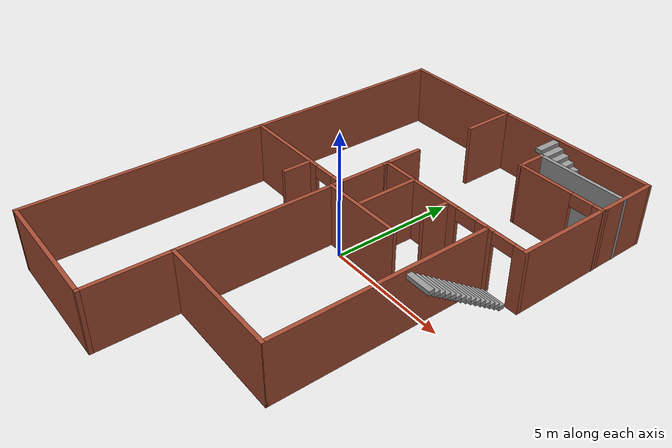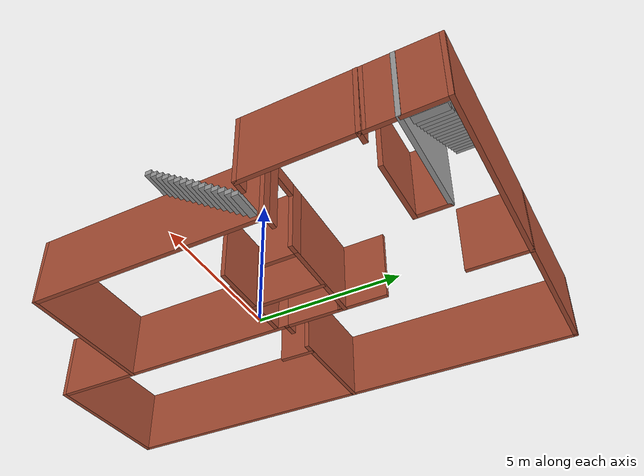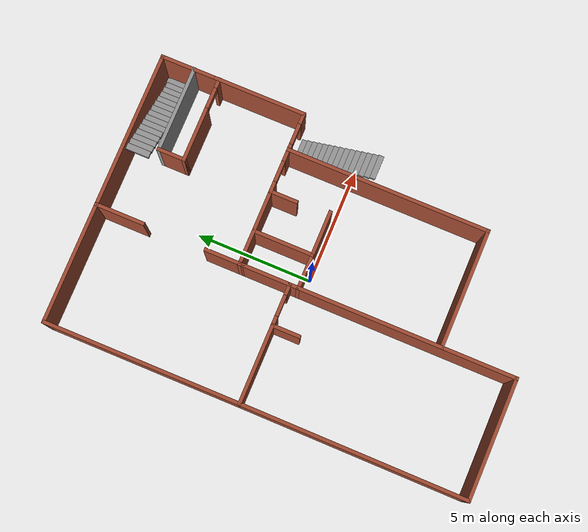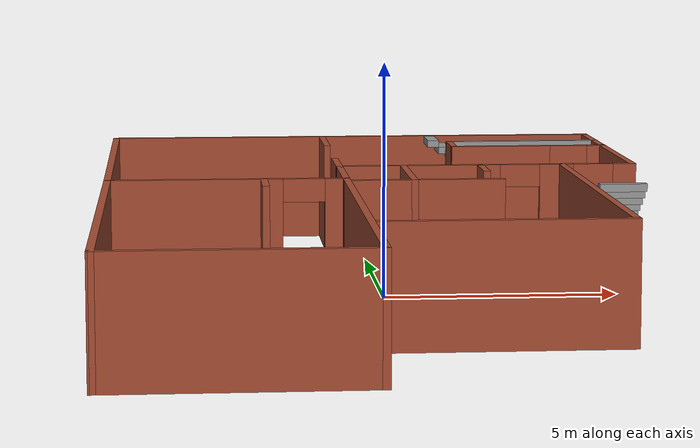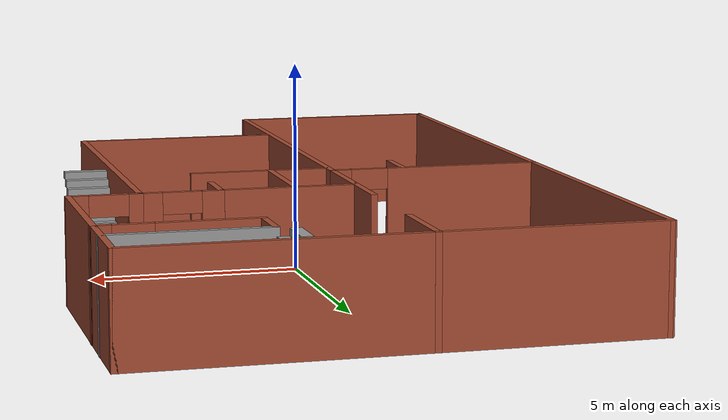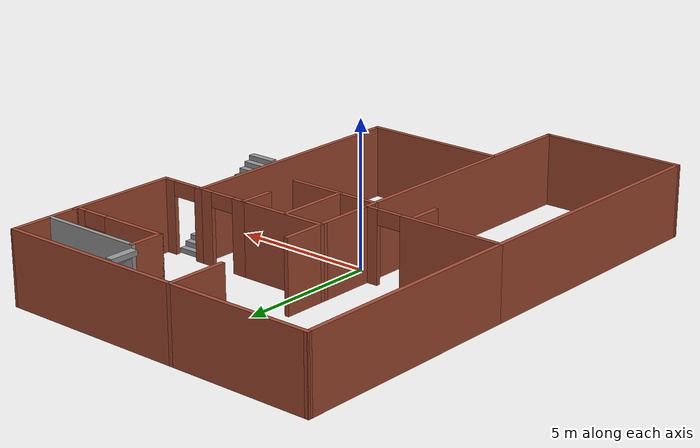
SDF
<?xml version='1.0'?>
<sdf version='1.5'>
  <model name='OutpostBasment'>
    <pose frame=''>0.004701 -0.024899 0 0 -0 0</pose>
    <link name='Stairs_0'>
      <visual name='Stairs_0_Visual_0'>
        <pose frame=''>4.95537 2.50215 0.083333 0 -0 0</pose>
        <geometry>
          <box>
            <size>1 0.233333 0.166667</size>
          </box>
        </geometry>
        <material>
          <script>
            <uri>file://media/materials/scripts/gazebo.material</uri>
            <name>Gazebo/Grey</name>
          </script>
          <ambient>1 1 1 1</ambient>
        </material>
      </visual>
      <collision name='Stairs_0_Collision_0'>
        <geometry>
          <box>
            <size>1 0.233333 0.166667</size>
          </box>
        </geometry>
        <pose frame=''>4.95537 2.50215 0.083333 0 -0 0</pose>
      </collision>
      <visual name='Stairs_0_Visual_1'>
        <pose frame=''>4.95537 2.26882 0.25 0 -0 0</pose>
        <geometry>
          <box>
            <size>1 0.233333 0.166667</size>
          </box>
        </geometry>
        <material>
          <script>
            <uri>file://media/materials/scripts/gazebo.material</uri>
            <name>Gazebo/Grey</name>
          </script>
          <ambient>1 1 1 1</ambient>
        </material>
      </visual>
      <collision name='Stairs_0_Collision_1'>
        <geometry>
          <box>
            <size>1 0.233333 0.166667</size>
          </box>
        </geometry>
        <pose frame=''>4.95537 2.26882 0.25 0 -0 0</pose>
      </collision>
      <visual name='Stairs_0_Visual_2'>
        <pose frame=''>4.95537 2.03548 0.416667 0 -0 0</pose>
        <geometry>
          <box>
            <size>1 0.233333 0.166667</size>
          </box>
        </geometry>
        <material>
          <script>
            <uri>file://media/materials/scripts/gazebo.material</uri>
            <name>Gazebo/Grey</name>
          </script>
          <ambient>1 1 1 1</ambient>
        </material>
      </visual>
      <collision name='Stairs_0_Collision_2'>
        <geometry>
          <box>
            <size>1 0.233333 0.166667</size>
          </box>
        </geometry>
        <pose frame=''>4.95537 2.03548 0.416667 0 -0 0</pose>
      </collision>
      <visual name='Stairs_0_Visual_3'>
        <pose frame=''>4.95537 1.80215 0.583333 0 -0 0</pose>
        <geometry>
          <box>
            <size>1 0.233333 0.166667</size>
          </box>
        </geometry>
        <material>
          <script>
            <uri>file://media/materials/scripts/gazebo.material</uri>
            <name>Gazebo/Grey</name>
          </script>
          <ambient>1 1 1 1</ambient>
        </material>
      </visual>
      <collision name='Stairs_0_Collision_3'>
        <geometry>
          <box>
            <size>1 0.233333 0.166667</size>
          </box>
        </geometry>
        <pose frame=''>4.95537 1.80215 0.583333 0 -0 0</pose>
      </collision>
      <visual name='Stairs_0_Visual_4'>
        <pose frame=''>4.95537 1.56882 0.75 0 -0 0</pose>
        <geometry>
          <box>
            <size>1 0.233333 0.166667</size>
          </box>
        </geometry>
        <material>
          <script>
            <uri>file://media/materials/scripts/gazebo.material</uri>
            <name>Gazebo/Grey</name>
          </script>
          <ambient>1 1 1 1</ambient>
        </material>
      </visual>
      <collision name='Stairs_0_Collision_4'>
        <geometry>
          <box>
            <size>1 0.233333 0.166667</size>
          </box>
        </geometry>
        <pose frame=''>4.95537 1.56882 0.75 0 -0 0</pose>
      </collision>
      <visual name='Stairs_0_Visual_5'>
        <pose frame=''>4.95537 1.33548 0.916667 0 -0 0</pose>
        <geometry>
          <box>
            <size>1 0.233333 0.166667</size>
          </box>
        </geometry>
        <material>
          <script>
            <uri>file://media/materials/scripts/gazebo.material</uri>
            <name>Gazebo/Grey</name>
          </script>
          <ambient>1 1 1 1</ambient>
        </material>
      </visual>
      <collision name='Stairs_0_Collision_5'>
        <geometry>
          <box>
            <size>1 0.233333 0.166667</size>
          </box>
        </geometry>
        <pose frame=''>4.95537 1.33548 0.916667 0 -0 0</pose>
      </collision>
      <visual name='Stairs_0_Visual_6'>
        <pose frame=''>4.95537 1.10215 1.08333 0 -0 0</pose>
        <geometry>
          <box>
            <size>1 0.233333 0.166667</size>
          </box>
        </geometry>
        <material>
          <script>
            <uri>file://media/materials/scripts/gazebo.material</uri>
            <name>Gazebo/Grey</name>
          </script>
          <ambient>1 1 1 1</ambient>
        </material>
      </visual>
      <collision name='Stairs_0_Collision_6'>
        <geometry>
          <box>
            <size>1 0.233333 0.166667</size>
          </box>
        </geometry>
        <pose frame=''>4.95537 1.10215 1.08333 0 -0 0</pose>
      </collision>
      <visual name='Stairs_0_Visual_7'>
        <pose frame=''>4.95537 0.868815 1.25 0 -0 0</pose>
        <geometry>
          <box>
            <size>1 0.233333 0.166667</size>
          </box>
        </geometry>
        <material>
          <script>
            <uri>file://media/materials/scripts/gazebo.material</uri>
            <name>Gazebo/Grey</name>
          </script>
          <ambient>1 1 1 1</ambient>
        </material>
      </visual>
      <collision name='Stairs_0_Collision_7'>
        <geometry>
          <box>
            <size>1 0.233333 0.166667</size>
          </box>
        </geometry>
        <pose frame=''>4.95537 0.868815 1.25 0 -0 0</pose>
      </collision>
      <visual name='Stairs_0_Visual_8'>
        <pose frame=''>4.95537 0.635481 1.41667 0 -0 0</pose>
        <geometry>
          <box>
            <size>1 0.233333 0.166667</size>
          </box>
        </geometry>
        <material>
          <script>
            <uri>file://media/materials/scripts/gazebo.material</uri>
            <name>Gazebo/Grey</name>
          </script>
          <ambient>1 1 1 1</ambient>
        </material>
      </visual>
      <collision name='Stairs_0_Collision_8'>
        <geometry>
          <box>
            <size>1 0.233333 0.166667</size>
          </box>
        </geometry>
        <pose frame=''>4.95537 0.635481 1.41667 0 -0 0</pose>
      </collision>
      <visual name='Stairs_0_Visual_9'>
        <pose frame=''>4.95537 0.402148 1.58333 0 -0 0</pose>
        <geometry>
          <box>
            <size>1 0.233333 0.166667</size>
          </box>
        </geometry>
        <material>
          <script>
            <uri>file://media/materials/scripts/gazebo.material</uri>
            <name>Gazebo/Grey</name>
          </script>
          <ambient>1 1 1 1</ambient>
        </material>
      </visual>
      <collision name='Stairs_0_Collision_9'>
        <geometry>
          <box>
            <size>1 0.233333 0.166667</size>
          </box>
        </geometry>
        <pose frame=''>4.95537 0.402148 1.58333 0 -0 0</pose>
      </collision>
      <visual name='Stairs_0_Visual_10'>
        <pose frame=''>4.95537 0.168815 1.75 0 -0 0</pose>
        <geometry>
          <box>
            <size>1 0.233333 0.166667</size>
          </box>
        </geometry>
        <material>
          <script>
            <uri>file://media/materials/scripts/gazebo.material</uri>
            <name>Gazebo/Grey</name>
          </script>
          <ambient>1 1 1 1</ambient>
        </material>
      </visual>
      <collision name='Stairs_0_Collision_10'>
        <geometry>
          <box>
            <size>1 0.233333 0.166667</size>
          </box>
        </geometry>
        <pose frame=''>4.95537 0.168815 1.75 0 -0 0</pose>
      </collision>
      <visual name='Stairs_0_Visual_11'>
        <pose frame=''>4.95537 -0.064519 1.91667 0 -0 0</pose>
        <geometry>
          <box>
            <size>1 0.233333 0.166667</size>
          </box>
        </geometry>
        <material>
          <script>
            <uri>file://media/materials/scripts/gazebo.material</uri>
            <name>Gazebo/Grey</name>
          </script>
          <ambient>1 1 1 1</ambient>
        </material>
      </visual>
      <collision name='Stairs_0_Collision_11'>
        <geometry>
          <box>
            <size>1 0.233333 0.166667</size>
          </box>
        </geometry>
        <pose frame=''>4.95537 -0.064519 1.91667 0 -0 0</pose>
      </collision>
      <visual name='Stairs_0_Visual_12'>
        <pose frame=''>4.95537 -0.297852 2.08333 0 -0 0</pose>
        <geometry>
          <box>
            <size>1 0.233333 0.166667</size>
          </box>
        </geometry>
        <material>
          <script>
            <uri>file://media/materials/scripts/gazebo.material</uri>
            <name>Gazebo/Grey</name>
          </script>
          <ambient>1 1 1 1</ambient>
        </material>
      </visual>
      <collision name='Stairs_0_Collision_12'>
        <geometry>
          <box>
            <size>1 0.233333 0.166667</size>
          </box>
        </geometry>
        <pose frame=''>4.95537 -0.297852 2.08333 0 -0 0</pose>
      </collision>
      <visual name='Stairs_0_Visual_13'>
        <pose frame=''>4.95537 -0.531185 2.25 0 -0 0</pose>
        <geometry>
          <box>
            <size>1 0.233333 0.166667</size>
          </box>
        </geometry>
        <material>
          <script>
            <uri>file://media/materials/scripts/gazebo.material</uri>
            <name>Gazebo/Grey</name>
          </script>
          <ambient>1 1 1 1</ambient>
        </material>
      </visual>
      <collision name='Stairs_0_Collision_13'>
        <geometry>
          <box>
            <size>1 0.233333 0.166667</size>
          </box>
        </geometry>
        <pose frame=''>4.95537 -0.531185 2.25 0 -0 0</pose>
      </collision>
      <visual name='Stairs_0_Visual_14'>
        <pose frame=''>4.95537 -0.764519 2.41667 0 -0 0</pose>
        <geometry>
          <box>
            <size>1 0.233333 0.166667</size>
          </box>
        </geometry>
        <material>
          <script>
            <uri>file://media/materials/scripts/gazebo.material</uri>
            <name>Gazebo/Grey</name>
          </script>
          <ambient>1 1 1 1</ambient>
        </material>
      </visual>
      <collision name='Stairs_0_Collision_14'>
        <geometry>
          <box>
            <size>1 0.233333 0.166667</size>
          </box>
        </geometry>
        <pose frame=''>4.95537 -0.764519 2.41667 0 -0 0</pose>
      </collision>
    </link>
    <link name='Stairs_1'>
      <visual name='Stairs_1_Visual_0'>
        <pose frame=''>5.62792 8.31958 0.083333 0 0 -1.5708</pose>
        <geometry>
          <box>
            <size>1 0.265981 0.166667</size>
          </box>
        </geometry>
        <material>
          <script>
            <uri>file://media/materials/scripts/gazebo.material</uri>
            <name>Gazebo/Grey</name>
          </script>
          <ambient>1 1 1 1</ambient>
        </material>
      </visual>
      <collision name='Stairs_1_Collision_0'>
        <geometry>
          <box>
            <size>1 0.265981 0.166667</size>
          </box>
        </geometry>
        <pose frame=''>5.62792 8.31958 0.083333 0 0 -1.5708</pose>
      </collision>
      <visual name='Stairs_1_Visual_1'>
        <pose frame=''>5.36193 8.31958 0.25 0 0 -1.5708</pose>
        <geometry>
          <box>
            <size>1 0.265981 0.166667</size>
          </box>
        </geometry>
        <material>
          <script>
            <uri>file://media/materials/scripts/gazebo.material</uri>
            <name>Gazebo/Grey</name>
          </script>
          <ambient>1 1 1 1</ambient>
        </material>
      </visual>
      <collision name='Stairs_1_Collision_1'>
        <geometry>
          <box>
            <size>1 0.265981 0.166667</size>
          </box>
        </geometry>
        <pose frame=''>5.36193 8.31958 0.25 0 0 -1.5708</pose>
      </collision>
      <visual name='Stairs_1_Visual_2'>
        <pose frame=''>5.09595 8.31958 0.416667 0 0 -1.5708</pose>
        <geometry>
          <box>
            <size>1 0.265981 0.166667</size>
          </box>
        </geometry>
        <material>
          <script>
            <uri>file://media/materials/scripts/gazebo.material</uri>
            <name>Gazebo/Grey</name>
          </script>
          <ambient>1 1 1 1</ambient>
        </material>
      </visual>
      <collision name='Stairs_1_Collision_2'>
        <geometry>
          <box>
            <size>1 0.265981 0.166667</size>
          </box>
        </geometry>
        <pose frame=''>5.09595 8.31958 0.416667 0 0 -1.5708</pose>
      </collision>
      <visual name='Stairs_1_Visual_3'>
        <pose frame=''>4.82997 8.31958 0.583333 0 0 -1.5708</pose>
        <geometry>
          <box>
            <size>1 0.265981 0.166667</size>
          </box>
        </geometry>
        <material>
          <script>
            <uri>file://media/materials/scripts/gazebo.material</uri>
            <name>Gazebo/Grey</name>
          </script>
          <ambient>1 1 1 1</ambient>
        </material>
      </visual>
      <collision name='Stairs_1_Collision_3'>
        <geometry>
          <box>
            <size>1 0.265981 0.166667</size>
          </box>
        </geometry>
        <pose frame=''>4.82997 8.31958 0.583333 0 0 -1.5708</pose>
      </collision>
      <visual name='Stairs_1_Visual_4'>
        <pose frame=''>4.56399 8.31958 0.75 0 0 -1.5708</pose>
        <geometry>
          <box>
            <size>1 0.265981 0.166667</size>
          </box>
        </geometry>
        <material>
          <script>
            <uri>file://media/materials/scripts/gazebo.material</uri>
            <name>Gazebo/Grey</name>
          </script>
          <ambient>1 1 1 1</ambient>
        </material>
      </visual>
      <collision name='Stairs_1_Collision_4'>
        <geometry>
          <box>
            <size>1 0.265981 0.166667</size>
          </box>
        </geometry>
        <pose frame=''>4.56399 8.31958 0.75 0 0 -1.5708</pose>
      </collision>
      <visual name='Stairs_1_Visual_5'>
        <pose frame=''>4.29801 8.31958 0.916667 0 0 -1.5708</pose>
        <geometry>
          <box>
            <size>1 0.265981 0.166667</size>
          </box>
        </geometry>
        <material>
          <script>
            <uri>file://media/materials/scripts/gazebo.material</uri>
            <name>Gazebo/Grey</name>
          </script>
          <ambient>1 1 1 1</ambient>
        </material>
      </visual>
      <collision name='Stairs_1_Collision_5'>
        <geometry>
          <box>
            <size>1 0.265981 0.166667</size>
          </box>
        </geometry>
        <pose frame=''>4.29801 8.31958 0.916667 0 0 -1.5708</pose>
      </collision>
      <visual name='Stairs_1_Visual_6'>
        <pose frame=''>4.03203 8.31958 1.08333 0 0 -1.5708</pose>
        <geometry>
          <box>
            <size>1 0.265981 0.166667</size>
          </box>
        </geometry>
        <material>
          <script>
            <uri>file://media/materials/scripts/gazebo.material</uri>
            <name>Gazebo/Grey</name>
          </script>
          <ambient>1 1 1 1</ambient>
        </material>
      </visual>
      <collision name='Stairs_1_Collision_6'>
        <geometry>
          <box>
            <size>1 0.265981 0.166667</size>
          </box>
        </geometry>
        <pose frame=''>4.03203 8.31958 1.08333 0 0 -1.5708</pose>
      </collision>
      <visual name='Stairs_1_Visual_7'>
        <pose frame=''>3.76605 8.31958 1.25 0 0 -1.5708</pose>
        <geometry>
          <box>
            <size>1 0.265981 0.166667</size>
          </box>
        </geometry>
        <material>
          <script>
            <uri>file://media/materials/scripts/gazebo.material</uri>
            <name>Gazebo/Grey</name>
          </script>
          <ambient>1 1 1 1</ambient>
        </material>
      </visual>
      <collision name='Stairs_1_Collision_7'>
        <geometry>
          <box>
            <size>1 0.265981 0.166667</size>
          </box>
        </geometry>
        <pose frame=''>3.76605 8.31958 1.25 0 0 -1.5708</pose>
      </collision>
      <visual name='Stairs_1_Visual_8'>
        <pose frame=''>3.50006 8.31958 1.41667 0 0 -1.5708</pose>
        <geometry>
          <box>
            <size>1 0.265981 0.166667</size>
          </box>
        </geometry>
        <material>
          <script>
            <uri>file://media/materials/scripts/gazebo.material</uri>
            <name>Gazebo/Grey</name>
          </script>
          <ambient>1 1 1 1</ambient>
        </material>
      </visual>
      <collision name='Stairs_1_Collision_8'>
        <geometry>
          <box>
            <size>1 0.265981 0.166667</size>
          </box>
        </geometry>
        <pose frame=''>3.50006 8.31958 1.41667 0 0 -1.5708</pose>
      </collision>
      <visual name='Stairs_1_Visual_9'>
        <pose frame=''>3.23408 8.31958 1.58333 0 0 -1.5708</pose>
        <geometry>
          <box>
            <size>1 0.265981 0.166667</size>
          </box>
        </geometry>
        <material>
          <script>
            <uri>file://media/materials/scripts/gazebo.material</uri>
            <name>Gazebo/Grey</name>
          </script>
          <ambient>1 1 1 1</ambient>
        </material>
      </visual>
      <collision name='Stairs_1_Collision_9'>
        <geometry>
          <box>
            <size>1 0.265981 0.166667</size>
          </box>
        </geometry>
        <pose frame=''>3.23408 8.31958 1.58333 0 0 -1.5708</pose>
      </collision>
      <visual name='Stairs_1_Visual_10'>
        <pose frame=''>2.9681 8.31958 1.75 0 0 -1.5708</pose>
        <geometry>
          <box>
            <size>1 0.265981 0.166667</size>
          </box>
        </geometry>
        <material>
          <script>
            <uri>file://media/materials/scripts/gazebo.material</uri>
            <name>Gazebo/Grey</name>
          </script>
          <ambient>1 1 1 1</ambient>
        </material>
      </visual>
      <collision name='Stairs_1_Collision_10'>
        <geometry>
          <box>
            <size>1 0.265981 0.166667</size>
          </box>
        </geometry>
        <pose frame=''>2.9681 8.31958 1.75 0 0 -1.5708</pose>
      </collision>
      <visual name='Stairs_1_Visual_11'>
        <pose frame=''>2.70212 8.31958 1.91667 0 0 -1.5708</pose>
        <geometry>
          <box>
            <size>1 0.265981 0.166667</size>
          </box>
        </geometry>
        <material>
          <script>
            <uri>file://media/materials/scripts/gazebo.material</uri>
            <name>Gazebo/Grey</name>
          </script>
          <ambient>1 1 1 1</ambient>
        </material>
      </visual>
      <collision name='Stairs_1_Collision_11'>
        <geometry>
          <box>
            <size>1 0.265981 0.166667</size>
          </box>
        </geometry>
        <pose frame=''>2.70212 8.31958 1.91667 0 0 -1.5708</pose>
      </collision>
      <visual name='Stairs_1_Visual_12'>
        <pose frame=''>2.43614 8.31958 2.08333 0 0 -1.5708</pose>
        <geometry>
          <box>
            <size>1 0.265981 0.166667</size>
          </box>
        </geometry>
        <material>
          <script>
            <uri>file://media/materials/scripts/gazebo.material</uri>
            <name>Gazebo/Grey</name>
          </script>
          <ambient>1 1 1 1</ambient>
        </material>
      </visual>
      <collision name='Stairs_1_Collision_12'>
        <geometry>
          <box>
            <size>1 0.265981 0.166667</size>
          </box>
        </geometry>
        <pose frame=''>2.43614 8.31958 2.08333 0 0 -1.5708</pose>
      </collision>
      <visual name='Stairs_1_Visual_13'>
        <pose frame=''>2.17016 8.31958 2.25 0 0 -1.5708</pose>
        <geometry>
          <box>
            <size>1 0.265981 0.166667</size>
          </box>
        </geometry>
        <material>
          <script>
            <uri>file://media/materials/scripts/gazebo.material</uri>
            <name>Gazebo/Grey</name>
          </script>
          <ambient>1 1 1 1</ambient>
        </material>
      </visual>
      <collision name='Stairs_1_Collision_13'>
        <geometry>
          <box>
            <size>1 0.265981 0.166667</size>
          </box>
        </geometry>
        <pose frame=''>2.17016 8.31958 2.25 0 0 -1.5708</pose>
      </collision>
      <visual name='Stairs_1_Visual_14'>
        <pose frame=''>1.90417 8.31958 2.41667 0 0 -1.5708</pose>
        <geometry>
          <box>
            <size>1 0.265981 0.166667</size>
          </box>
        </geometry>
        <material>
          <script>
            <uri>file://media/materials/scripts/gazebo.material</uri>
            <name>Gazebo/Grey</name>
          </script>
          <ambient>1 1 1 1</ambient>
        </material>
      </visual>
      <collision name='Stairs_1_Collision_14'>
        <geometry>
          <box>
            <size>1 0.265981 0.166667</size>
          </box>
        </geometry>
        <pose frame=''>1.90417 8.31958 2.41667 0 0 -1.5708</pose>
      </collision>
    </link>
    <link name='Wall_0'>
      <collision name='Wall_0_Collision'>
        <geometry>
          <box>
            <size>5.25 0.15 2.5</size>
          </box>
        </geometry>
        <pose frame=''>0 0 1.25 0 -0 0</pose>
      </collision>
      <visual name='Wall_0_Visual'>
        <pose frame=''>0 0 1.25 0 -0 0</pose>
        <geometry>
          <box>
            <size>5.25 0.15 2.5</size>
          </box>
        </geometry>
        <material>
          <script>
            <uri>file://media/materials/scripts/gazebo.material</uri>
            <name>Gazebo/Bricks</name>
          </script>
          <ambient>1 1 1 1</ambient>
        </material>
      </visual>
      <pose frame=''>-3.3147 -8.9751 0 0 -0 0</pose>
    </link>
    <link name='Wall_11'>
      <collision name='Wall_11_Collision'>
        <geometry>
          <box>
            <size>5.25 0.15 2.5</size>
          </box>
        </geometry>
        <pose frame=''>0 0 1.25 0 -0 0</pose>
      </collision>
      <visual name='Wall_11_Visual'>
        <pose frame=''>0 0 1.25 0 -0 0</pose>
        <geometry>
          <box>
            <size>5.25 0.15 2.5</size>
          </box>
        </geometry>
        <material>
          <script>
            <uri>file://media/materials/scripts/gazebo.material</uri>
            <name>Gazebo/Bricks</name>
          </script>
          <ambient>1 1 1 1</ambient>
        </material>
      </visual>
      <pose frame=''>-3.3147 8.9749 0 0 -0 0</pose>
    </link>
    <link name='Wall_12'>
      <collision name='Wall_12_Collision'>
        <geometry>
          <box>
            <size>0.15 0.15 2.5</size>
          </box>
        </geometry>
        <pose frame=''>0 0 1.25 0 -0 0</pose>
      </collision>
      <visual name='Wall_12_Visual'>
        <pose frame=''>0 0 1.25 0 -0 0</pose>
        <geometry>
          <box>
            <size>0.15 0.15 2.5</size>
          </box>
        </geometry>
        <material>
          <script>
            <uri>file://media/materials/scripts/gazebo.material</uri>
            <name>Gazebo/Grey</name>
          </script>
          <ambient>1 1 1 1</ambient>
        </material>
      </visual>
      <pose frame=''>-0.764701 8.9749 0 0 -0 0</pose>
    </link>
    <link name='Wall_13'>
      <collision name='Wall_13_Collision'>
        <geometry>
          <box>
            <size>6.77011 0.15 2.5</size>
          </box>
        </geometry>
        <pose frame=''>0 0 1.25 0 -0 0</pose>
      </collision>
      <visual name='Wall_13_Visual'>
        <pose frame=''>0 0 1.25 0 -0 0</pose>
        <geometry>
          <box>
            <size>6.77011 0.15 2.5</size>
          </box>
        </geometry>
        <material>
          <script>
            <uri>file://media/materials/scripts/gazebo.material</uri>
            <name>Gazebo/Bricks</name>
          </script>
          <ambient>1 1 1 1</ambient>
        </material>
      </visual>
      <pose frame=''>2.5453 8.9749 0 0 -0 0</pose>
    </link>
    <link name='Wall_16'>
      <collision name='Wall_16_Collision'>
        <geometry>
          <box>
            <size>2.5 0.15 2.5</size>
          </box>
        </geometry>
        <pose frame=''>0 0 1.25 0 -0 0</pose>
      </collision>
      <visual name='Wall_16_Visual'>
        <pose frame=''>0 0 1.25 0 -0 0</pose>
        <geometry>
          <box>
            <size>2.5 0.15 2.5</size>
          </box>
        </geometry>
        <material>
          <script>
            <uri>file://media/materials/scripts/gazebo.material</uri>
            <name>Gazebo/Bricks</name>
          </script>
          <ambient>1 1 1 1</ambient>
        </material>
      </visual>
      <pose frame=''>5.85536 7.7999 0 0 0 -1.57075</pose>
    </link>
    <link name='Wall_17'>
      <collision name='Wall_17_Collision'>
        <geometry>
          <box>
            <size>4 0.15 2.5</size>
          </box>
        </geometry>
        <pose frame=''>0 0 1.25 0 -0 0</pose>
      </collision>
      <visual name='Wall_17_Visual'>
        <pose frame=''>0 0 1.25 0 -0 0</pose>
        <geometry>
          <box>
            <size>4 0.15 2.5</size>
          </box>
        </geometry>
        <material>
          <script>
            <uri>file://media/materials/scripts/gazebo.material</uri>
            <name>Gazebo/Bricks</name>
          </script>
          <ambient>1 1 1 1</ambient>
        </material>
      </visual>
      <pose frame=''>5.85541 4.6999 0 0 0 -1.5708</pose>
    </link>
    <link name='Wall_18'>
      <pose frame=''>5.05541 2.7749 0 0 -0 3.14159</pose>
      <visual name='Wall_18_Visual_0'>
        <pose frame=''>-0.612479 0 1.25 0 -0 0</pose>
        <geometry>
          <box>
            <size>0.525043 0.15 2.5</size>
          </box>
        </geometry>
        <material>
          <script>
            <uri>file://media/materials/scripts/gazebo.material</uri>
            <name>Gazebo/Bricks</name>
          </script>
          <ambient>1 1 1 1</ambient>
        </material>
      </visual>
      <collision name='Wall_18_Collision_0'>
        <geometry>
          <box>
            <size>0.525043 0.15 2.5</size>
          </box>
        </geometry>
        <pose frame=''>-0.612479 0 1.25 0 -0 0</pose>
      </collision>
      <visual name='Wall_18_Visual_1'>
        <pose frame=''>0.712521 0 1.25 0 -0 0</pose>
        <geometry>
          <box>
            <size>0.324957 0.15 2.5</size>
          </box>
        </geometry>
        <material>
          <script>
            <uri>file://media/materials/scripts/gazebo.material</uri>
            <name>Gazebo/Bricks</name>
          </script>
          <ambient>1 1 1 1</ambient>
        </material>
      </visual>
      <collision name='Wall_18_Collision_1'>
        <geometry>
          <box>
            <size>0.324957 0.15 2.5</size>
          </box>
        </geometry>
        <pose frame=''>0.712521 0 1.25 0 -0 0</pose>
      </collision>
      <visual name='Wall_18_Visual_2'>
        <pose frame=''>0.100043 0 2.25 0 -0 0</pose>
        <geometry>
          <box>
            <size>0.9 0.15 0.5</size>
          </box>
        </geometry>
        <material>
          <script>
            <uri>file://media/materials/scripts/gazebo.material</uri>
            <name>Gazebo/Bricks</name>
          </script>
          <ambient>1 1 1 1</ambient>
        </material>
      </visual>
      <collision name='Wall_18_Collision_2'>
        <geometry>
          <box>
            <size>0.9 0.15 0.5</size>
          </box>
        </geometry>
        <pose frame=''>0.100043 0 2.25 0 -0 0</pose>
      </collision>
    </link>
    <link name='Wall_19'>
      <pose frame=''>3.33036 2.7749 0 0 -0 3.14159</pose>
      <visual name='Wall_19_Visual_0'>
        <pose frame=''>-0.706729 0 1.25 0 -0 0</pose>
        <geometry>
          <box>
            <size>0.586542 0.15 2.5</size>
          </box>
        </geometry>
        <material>
          <script>
            <uri>file://media/materials/scripts/gazebo.material</uri>
            <name>Gazebo/Bricks</name>
          </script>
          <ambient>1 1 1 1</ambient>
        </material>
      </visual>
      <collision name='Wall_19_Collision_0'>
        <geometry>
          <box>
            <size>0.586542 0.15 2.5</size>
          </box>
        </geometry>
        <pose frame=''>-0.706729 0 1.25 0 -0 0</pose>
      </collision>
      <visual name='Wall_19_Visual_1'>
        <pose frame=''>0.743271 0 1.25 0 -0 0</pose>
        <geometry>
          <box>
            <size>0.513458 0.15 2.5</size>
          </box>
        </geometry>
        <material>
          <script>
            <uri>file://media/materials/scripts/gazebo.material</uri>
            <name>Gazebo/Bricks</name>
          </script>
          <ambient>1 1 1 1</ambient>
        </material>
      </visual>
      <collision name='Wall_19_Collision_1'>
        <geometry>
          <box>
            <size>0.513458 0.15 2.5</size>
          </box>
        </geometry>
        <pose frame=''>0.743271 0 1.25 0 -0 0</pose>
      </collision>
      <visual name='Wall_19_Visual_2'>
        <pose frame=''>0.036542 0 2.25 0 -0 0</pose>
        <geometry>
          <box>
            <size>0.9 0.15 0.5</size>
          </box>
        </geometry>
        <material>
          <script>
            <uri>file://media/materials/scripts/gazebo.material</uri>
            <name>Gazebo/Bricks</name>
          </script>
          <ambient>1 1 1 1</ambient>
        </material>
      </visual>
      <collision name='Wall_19_Collision_2'>
        <geometry>
          <box>
            <size>0.9 0.15 0.5</size>
          </box>
        </geometry>
        <pose frame=''>0.036542 0 2.25 0 -0 0</pose>
      </collision>
    </link>
    <link name='Wall_2'>
      <collision name='Wall_2_Collision'>
        <geometry>
          <box>
            <size>9.75014 0.15 2.5</size>
          </box>
        </geometry>
        <pose frame=''>0 0 1.25 0 -0 0</pose>
      </collision>
      <visual name='Wall_2_Visual'>
        <pose frame=''>0 0 1.25 0 -0 0</pose>
        <geometry>
          <box>
            <size>9.75014 0.15 2.5</size>
          </box>
        </geometry>
        <material>
          <script>
            <uri>file://media/materials/scripts/gazebo.material</uri>
            <name>Gazebo/Bricks</name>
          </script>
          <ambient>1 1 1 1</ambient>
        </material>
      </visual>
      <pose frame=''>-5.8562 -4.1751 0 0 -0 1.56903</pose>
    </link>
    <link name='Wall_20'>
      <collision name='Wall_20_Collision'>
        <geometry>
          <box>
            <size>3.32 0.15 2.5</size>
          </box>
        </geometry>
        <pose frame=''>0 0 1.25 0 -0 0</pose>
      </collision>
      <visual name='Wall_20_Visual'>
        <pose frame=''>0 0 1.25 0 -0 0</pose>
        <geometry>
          <box>
            <size>3.32 0.15 2.5</size>
          </box>
        </geometry>
        <material>
          <script>
            <uri>file://media/materials/scripts/gazebo.material</uri>
            <name>Gazebo/Bricks</name>
          </script>
          <ambient>1 1 1 1</ambient>
        </material>
      </visual>
      <pose frame=''>0.820299 2.7749 0 0 -0 3.14159</pose>
    </link>
    <link name='Wall_3'>
      <pose frame=''>-3.3062 0.624899 0 0 -0 0</pose>
      <visual name='Wall_3_Visual_0'>
        <pose frame=''>-0.716832 0 1.25 0 -0 0</pose>
        <geometry>
          <box>
            <size>3.79934 0.15 2.5</size>
          </box>
        </geometry>
        <material>
          <script>
            <uri>file://media/materials/scripts/gazebo.material</uri>
            <name>Gazebo/Bricks</name>
          </script>
          <ambient>1 1 1 1</ambient>
        </material>
      </visual>
      <collision name='Wall_3_Collision_0'>
        <geometry>
          <box>
            <size>3.79934 0.15 2.5</size>
          </box>
        </geometry>
        <pose frame=''>-0.716832 0 1.25 0 -0 0</pose>
      </collision>
      <visual name='Wall_3_Visual_1'>
        <pose frame=''>2.34967 0 1.25 0 -0 0</pose>
        <geometry>
          <box>
            <size>0.533663 0.15 2.5</size>
          </box>
        </geometry>
        <material>
          <script>
            <uri>file://media/materials/scripts/gazebo.material</uri>
            <name>Gazebo/Bricks</name>
          </script>
          <ambient>1 1 1 1</ambient>
        </material>
      </visual>
      <collision name='Wall_3_Collision_1'>
        <geometry>
          <box>
            <size>0.533663 0.15 2.5</size>
          </box>
        </geometry>
        <pose frame=''>2.34967 0 1.25 0 -0 0</pose>
      </collision>
      <visual name='Wall_3_Visual_2'>
        <pose frame=''>1.63284 0 2.25 0 -0 0</pose>
        <geometry>
          <box>
            <size>0.9 0.15 0.5</size>
          </box>
        </geometry>
        <material>
          <script>
            <uri>file://media/materials/scripts/gazebo.material</uri>
            <name>Gazebo/Bricks</name>
          </script>
          <ambient>1 1 1 1</ambient>
        </material>
      </visual>
      <collision name='Wall_3_Collision_2'>
        <geometry>
          <box>
            <size>0.9 0.15 0.5</size>
          </box>
        </geometry>
        <pose frame=''>1.63284 0 2.25 0 -0 0</pose>
      </collision>
    </link>
    <link name='Wall_31'>
      <collision name='Wall_31_Collision'>
        <geometry>
          <box>
            <size>2.15069 0.15 2.5</size>
          </box>
        </geometry>
        <pose frame=''>0 0 1.25 0 -0 0</pose>
      </collision>
      <visual name='Wall_31_Visual'>
        <pose frame=''>0 0 1.25 0 -0 0</pose>
        <geometry>
          <box>
            <size>2.15069 0.15 2.5</size>
          </box>
        </geometry>
        <material>
          <script>
            <uri>file://media/materials/scripts/gazebo.material</uri>
            <name>Gazebo/Bricks</name>
          </script>
          <ambient>1 1 1 1</ambient>
        </material>
      </visual>
      <pose frame=''>-0.764701 1.6249 0 0 0 -1.5708</pose>
    </link>
    <link name='Wall_36'>
      <collision name='Wall_36_Collision'>
        <geometry>
          <box>
            <size>8.75 0.15 2.5</size>
          </box>
        </geometry>
        <pose frame=''>0 0 1.25 0 -0 0</pose>
      </collision>
      <visual name='Wall_36_Visual'>
        <pose frame=''>0 0 1.25 0 -0 0</pose>
        <geometry>
          <box>
            <size>8.75 0.15 2.5</size>
          </box>
        </geometry>
        <material>
          <script>
            <uri>file://media/materials/scripts/gazebo.material</uri>
            <name>Gazebo/Bricks</name>
          </script>
          <ambient>1 1 1 1</ambient>
        </material>
      </visual>
      <pose frame=''>4.25536 -1.5251 0 0 0 -1.57081</pose>
    </link>
    <link name='Wall_37'>
      <collision name='Wall_37_Collision'>
        <geometry>
          <box>
            <size>5.17 0.15 2.5</size>
          </box>
        </geometry>
        <pose frame=''>0 0 1.25 0 -0 0</pose>
      </collision>
      <visual name='Wall_37_Visual'>
        <pose frame=''>0 0 1.25 0 -0 0</pose>
        <geometry>
          <box>
            <size>5.17 0.15 2.5</size>
          </box>
        </geometry>
        <material>
          <script>
            <uri>file://media/materials/scripts/gazebo.material</uri>
            <name>Gazebo/Bricks</name>
          </script>
          <ambient>1 1 1 1</ambient>
        </material>
      </visual>
      <pose frame=''>1.7453 -5.8251 0 0 -0 3.14159</pose>
    </link>
    <link name='Wall_4'>
      <collision name='Wall_4_Collision'>
        <geometry>
          <box>
            <size>9.75014 0.15 2.5</size>
          </box>
        </geometry>
        <pose frame=''>0 0 1.25 0 -0 0</pose>
      </collision>
      <visual name='Wall_4_Visual'>
        <pose frame=''>0 0 1.25 0 -0 0</pose>
        <geometry>
          <box>
            <size>9.75014 0.15 2.5</size>
          </box>
        </geometry>
        <material>
          <script>
            <uri>file://media/materials/scripts/gazebo.material</uri>
            <name>Gazebo/Bricks</name>
          </script>
          <ambient>1 1 1 1</ambient>
        </material>
      </visual>
      <pose frame=''>-0.764701 -4.1751 0 0 0 -1.5708</pose>
    </link>
    <link name='Wall_41'>
      <collision name='Wall_41_Collision'>
        <geometry>
          <box>
            <size>1.25 0.15 2.5</size>
          </box>
        </geometry>
        <pose frame=''>0 0 1.25 0 -0 0</pose>
      </collision>
      <visual name='Wall_41_Visual'>
        <pose frame=''>0 0 1.25 0 -0 0</pose>
        <geometry>
          <box>
            <size>1.25 0.15 2.5</size>
          </box>
        </geometry>
        <material>
          <script>
            <uri>file://media/materials/scripts/gazebo.material</uri>
            <name>Gazebo/Bricks</name>
          </script>
          <ambient>1 1 1 1</ambient>
        </material>
      </visual>
      <pose frame=''>2.4053 2.2249 0 0 0 -1.5708</pose>
    </link>
    <link name='Wall_44'>
      <collision name='Wall_44_Collision'>
        <geometry>
          <box>
            <size>3.44835 0.15 2.5</size>
          </box>
        </geometry>
        <pose frame=''>0 0 1.25 0 -0 0</pose>
      </collision>
      <visual name='Wall_44_Visual'>
        <pose frame=''>0 0 1.25 0 -0 0</pose>
        <geometry>
          <box>
            <size>3.44835 0.15 2.5</size>
          </box>
        </geometry>
        <material>
          <script>
            <uri>file://media/materials/scripts/gazebo.material</uri>
            <name>Gazebo/Bricks</name>
          </script>
          <ambient>1 1 1 1</ambient>
        </material>
      </visual>
      <pose frame=''>0.884299 0.256899 0 0 -0 0</pose>
    </link>
    <link name='Wall_46'>
      <collision name='Wall_46_Collision'>
        <geometry>
          <box>
            <size>2.616 0.15 2.5</size>
          </box>
        </geometry>
        <pose frame=''>0 0 1.25 0 -0 0</pose>
      </collision>
      <visual name='Wall_46_Visual'>
        <pose frame=''>0 0 1.25 0 -0 0</pose>
        <geometry>
          <box>
            <size>2.616 0.15 2.5</size>
          </box>
        </geometry>
        <material>
          <script>
            <uri>file://media/materials/scripts/gazebo.material</uri>
            <name>Gazebo/Bricks</name>
          </script>
          <ambient>1 1 1 1</ambient>
        </material>
      </visual>
      <pose frame=''>0.670299 1.4899 0 0 0 -1.5708</pose>
    </link>
    <link name='Wall_49'>
      <collision name='Wall_49_Collision'>
        <geometry>
          <box>
            <size>3.75 0.15 2.5</size>
          </box>
        </geometry>
        <pose frame=''>0 0 1.25 0 -0 0</pose>
      </collision>
      <visual name='Wall_49_Visual'>
        <pose frame=''>0 0 1.25 0 -0 0</pose>
        <geometry>
          <box>
            <size>3.75 0.15 2.5</size>
          </box>
        </geometry>
        <material>
          <script>
            <uri>file://media/materials/scripts/gazebo.material</uri>
            <name>Gazebo/Grey</name>
          </script>
          <ambient>1 1 1 1</ambient>
        </material>
      </visual>
      <pose frame=''>4.06485 7.585 0 0 -0 3.14159</pose>
    </link>
    <link name='Wall_50'>
      <collision name='Wall_50_Collision'>
        <geometry>
          <box>
            <size>1.25 0.15 2.5</size>
          </box>
        </geometry>
        <pose frame=''>0 0 1.25 0 -0 0</pose>
      </collision>
      <visual name='Wall_50_Visual'>
        <pose frame=''>0 0 1.25 0 -0 0</pose>
        <geometry>
          <box>
            <size>1.25 0.15 2.5</size>
          </box>
        </geometry>
        <material>
          <script>
            <uri>file://media/materials/scripts/gazebo.material</uri>
            <name>Gazebo/Bricks</name>
          </script>
          <ambient>1 1 1 1</ambient>
        </material>
      </visual>
      <pose frame=''>2.26485 7.035 0 0 0 -1.5708</pose>
    </link>
    <link name='Wall_51'>
      <pose frame=''>4.06485 6.485 0 0 -0 0</pose>
      <visual name='Wall_51_Visual_0'>
        <pose frame=''>-0.682262 0 1.25 0 -0 0</pose>
        <geometry>
          <box>
            <size>2.38548 0.15 2.5</size>
          </box>
        </geometry>
        <material>
          <script>
            <uri>file://media/materials/scripts/gazebo.material</uri>
            <name>Gazebo/Bricks</name>
          </script>
          <ambient>1 1 1 1</ambient>
        </material>
      </visual>
      <collision name='Wall_51_Collision_0'>
        <geometry>
          <box>
            <size>2.38548 0.15 2.5</size>
          </box>
        </geometry>
        <pose frame=''>-0.682262 0 1.25 0 -0 0</pose>
      </collision>
      <visual name='Wall_51_Visual_1'>
        <pose frame=''>1.64274 0 1.25 0 -0 0</pose>
        <geometry>
          <box>
            <size>0.464523 0.15 2.5</size>
          </box>
        </geometry>
        <material>
          <script>
            <uri>file://media/materials/scripts/gazebo.material</uri>
            <name>Gazebo/Bricks</name>
          </script>
          <ambient>1 1 1 1</ambient>
        </material>
      </visual>
      <collision name='Wall_51_Collision_1'>
        <geometry>
          <box>
            <size>0.464523 0.15 2.5</size>
          </box>
        </geometry>
        <pose frame=''>1.64274 0 1.25 0 -0 0</pose>
      </collision>
      <visual name='Wall_51_Visual_2'>
        <pose frame=''>0.960477 0 2.25 0 -0 0</pose>
        <geometry>
          <box>
            <size>0.9 0.15 0.5</size>
          </box>
        </geometry>
        <material>
          <script>
            <uri>file://media/materials/scripts/gazebo.material</uri>
            <name>Gazebo/Bricks</name>
          </script>
          <ambient>1 1 1 1</ambient>
        </material>
      </visual>
      <collision name='Wall_51_Collision_2'>
        <geometry>
          <box>
            <size>0.9 0.15 0.5</size>
          </box>
        </geometry>
        <pose frame=''>0.960477 0 2.25 0 -0 0</pose>
      </collision>
    </link>
    <link name='Wall_53'>
      <collision name='Wall_53_Collision'>
        <geometry>
          <box>
            <size>1.75 0.15 2.5</size>
          </box>
        </geometry>
        <pose frame=''>0 0 1.25 0 -0 0</pose>
      </collision>
      <visual name='Wall_53_Visual'>
        <pose frame=''>0 0 1.25 0 -0 0</pose>
        <geometry>
          <box>
            <size>1.75 0.15 2.5</size>
          </box>
        </geometry>
        <material>
          <script>
            <uri>file://media/materials/scripts/gazebo.material</uri>
            <name>Gazebo/Bricks</name>
          </script>
          <ambient>1 1 1 1</ambient>
        </material>
      </visual>
      <pose frame=''>-0.764701 3.4249 0 0 -0 1.5708</pose>
    </link>
    <link name='Wall_55'>
      <collision name='Wall_55_Collision'>
        <geometry>
          <box>
            <size>2.1568 0.15 2.5</size>
          </box>
        </geometry>
        <pose frame=''>0 0 1.25 0 -0 0</pose>
      </collision>
      <visual name='Wall_55_Visual'>
        <pose frame=''>0 0 1.25 0 -0 0</pose>
        <geometry>
          <box>
            <size>2.1568 0.15 2.5</size>
          </box>
        </geometry>
        <material>
          <script>
            <uri>file://media/materials/scripts/gazebo.material</uri>
            <name>Gazebo/Bricks</name>
          </script>
          <ambient>1 1 1 1</ambient>
        </material>
      </visual>
      <pose frame=''>-0.764701 7.9719 0 0 -0 1.5708</pose>
    </link>
    <link name='Wall_6'>
      <collision name='Wall_6_Collision'>
        <geometry>
          <box>
            <size>1.25 0.15 2.5</size>
          </box>
        </geometry>
        <pose frame=''>0 0 1.25 0 -0 0</pose>
      </collision>
      <visual name='Wall_6_Visual'>
        <pose frame=''>0 0 1.25 0 -0 0</pose>
        <geometry>
          <box>
            <size>1.25 0.15 2.5</size>
          </box>
        </geometry>
        <material>
          <script>
            <uri>file://media/materials/scripts/gazebo.material</uri>
            <name>Gazebo/Bricks</name>
          </script>
          <ambient>1 1 1 1</ambient>
        </material>
      </visual>
      <pose frame=''>-2.5247 0.054899 0 0 0 -1.5708</pose>
    </link>
    <link name='Wall_8'>
      <collision name='Wall_8_Collision'>
        <geometry>
          <box>
            <size>8.50017 0.15 2.5</size>
          </box>
        </geometry>
        <pose frame=''>0 0 1.25 0 -0 0</pose>
      </collision>
      <visual name='Wall_8_Visual'>
        <pose frame=''>0 0 1.25 0 -0 0</pose>
        <geometry>
          <box>
            <size>8.50017 0.15 2.5</size>
          </box>
        </geometry>
        <material>
          <script>
            <uri>file://media/materials/scripts/gazebo.material</uri>
            <name>Gazebo/Bricks</name>
          </script>
          <ambient>1 1 1 1</ambient>
        </material>
      </visual>
      <pose frame=''>-5.8562 4.7999 0 0 -0 1.57283</pose>
    </link>
    <static>1</static>
  </model>
</sdf>
